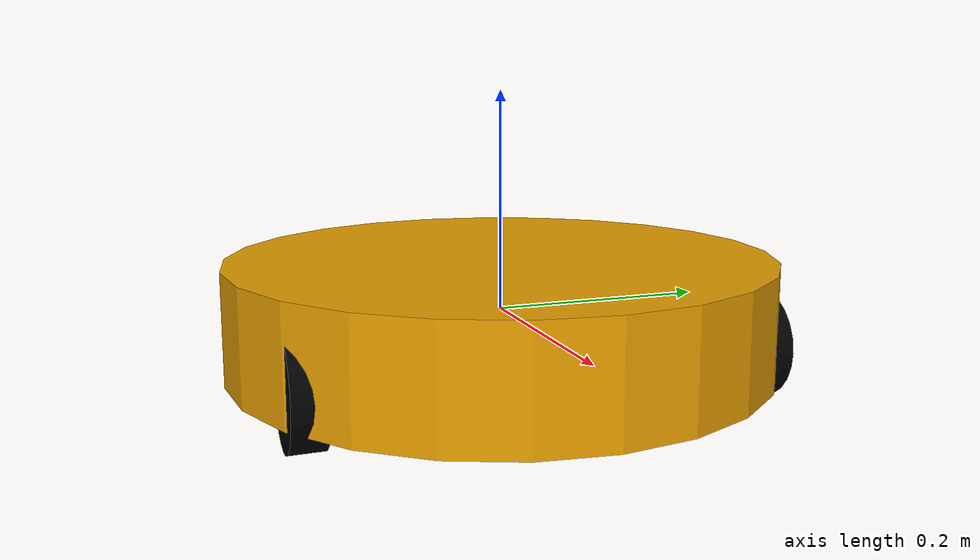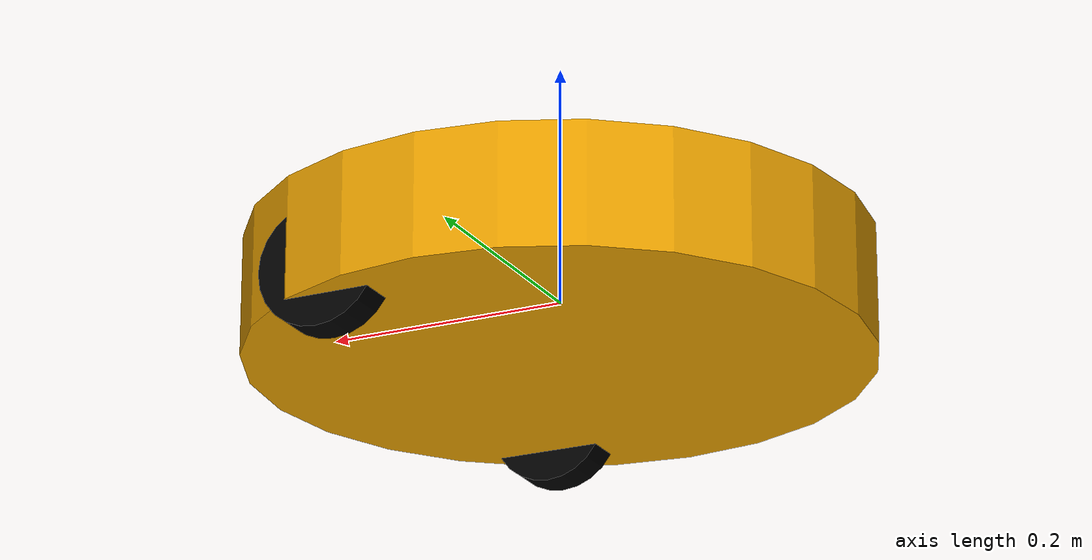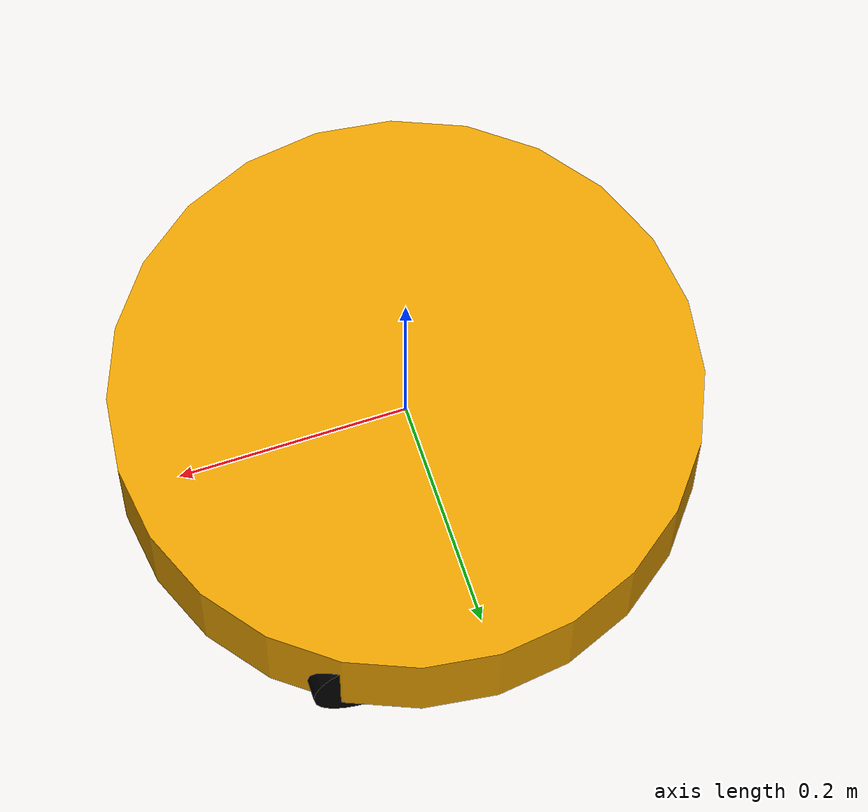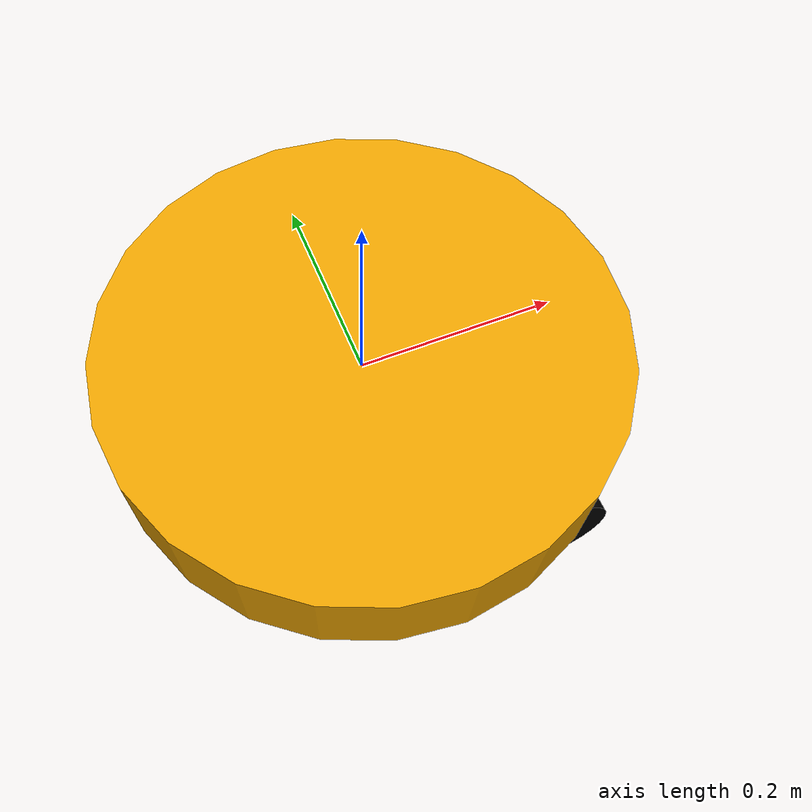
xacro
<?xml version ="1.0"?>
<robot xmlns:xacro="http://www.ros.org/wiki/xacro" name="mon_second_robot">

    <xacro:property name="chassis_diameter" value="0.5"/>
    <xacro:property name="chassis_height" value="0.1"/>
    <xacro:property name="wheel_diameter" value="0.1"/>
    <xacro:property name="wheel_width" value="0.03"/>
    <xacro:property name="wheel_desaxing" value="0.4"/>
    <xacro:property name="wheel_forwarding" value="0.1"/>
    <xacro:property name="crazy_wheel_backwarding" value="0.2"/>
    <xacro:property name="crazy_wheel_diameter" value="0.05"/>
    <xacro:property name="crazy_wheel_width" value="0.02"/>

    <xacro:include filename="$(find second_robot_description)/urdf/wheel.xacro" />
    <xacro:include filename="$(find second_robot_description)/urdf/inertia.xacro" />

    <material name="Black">
        <color rgba="0.0 0.0 0.0 1.0"/>
    </material>

    <link name="base_link">
        <visual>
            <geometry>
                <cylinder radius="${chassis_diameter/2}" length="${chassis_height}" />
            </geometry>
        </visual>
        <collision>
            <geometry>
                <cylinder radius="${chassis_diameter/2}" length="${chassis_height}" />
            </geometry>
        </collision>
        <xacro:cylinder_inertial density="0.5" r="${chassis_diameter/2}" h="${chassis_height}"/>
     </link>

    <xacro:wheel_macro side="left">
        <cylinder radius="${wheel_diameter/2}" length="${wheel_width}" />
    </xacro:wheel_macro>

    <xacro:wheel_macro side="right">
        <cylinder radius="${wheel_diameter/2}" length="${wheel_width}" />
    </xacro:wheel_macro>

    <link name="crazy_wheel_support"/>

    <joint name="crazy_wheel_support_joint" type="continuous">
        <parent link="base_link"/>
        <child link="crazy_wheel_support"/>
        <origin xyz="${-crazy_wheel_backwarding} 0.0 ${-(wheel_diameter - crazy_wheel_diameter)/2}"/>
        <axis xyz="0.0 0.0 1.0"/>
    </joint>

    <link name="crazy_wheel">
        <visual>
            <geometry>
                <cylinder radius="${crazy_wheel_diameter/2}" length="${crazy_wheel_width}" />
            </geometry>
            <origin rpy="${pi/2} 0.0 0.0"/>
            <material name="Black"/>
        </visual>
        <collision>
            <geometry>
                <cylinder radius="${crazy_wheel_diameter/2}" length="${crazy_wheel_width}" />
            </geometry>
            <origin rpy="${pi/2} 0.0 0.0"/>
            <material name="Black"/>
        </collision>
        <xacro:cylinder_inertial density="1.5" r="${crazy_wheel_diameter/2}" h="${crazy_wheel_width}"/>
    </link>

    <joint name="crazy_wheel_joint" type="continuous">
        <parent link="crazy_wheel_support"/>
        <child link="crazy_wheel"/>
        <origin xyz="0.0 0.0 0.0"/>
        <axis xyz="0.0 1.0 0.0"/>
    </joint>

</robot>

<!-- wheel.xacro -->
<robot xmlns:xacro="http://www.ros.org/wiki/xacro" name="mon_second_robot">

    <xacro:macro name="wheel_joint_origin" params="side">
        <xacro:if value="${side == 'left'}">
            <origin xyz="${wheel_forwarding} ${wheel_desaxing/2} ${-wheel_diameter/4}"/>
        </xacro:if>
        <xacro:if value="${side == 'right'}">
            <origin xyz="${wheel_forwarding} ${-wheel_desaxing/2} ${-wheel_diameter/4}"/>
        </xacro:if>
    </xacro:macro>

    <xacro:macro name="wheel_macro" params="side *shape">
    <link name="${side}_wheel">
        <visual>
            <geometry>
                <xacro:insert_block name="shape" />
            </geometry>
            <origin rpy="${pi/2} 0.0 0.0"/>
            <material name="Black"/>
        </visual>
        <collision>
            <geometry>
                <xacro:insert_block name="shape" />
            </geometry>
            <origin rpy="${pi/2} 0.0 0.0"/>
            <material name="Black"/>
        </collision>
        <xacro:cylinder_inertial density="7.8" r="${wheel_diameter/2}" h="${wheel_width}"/>
    </link>

    <joint name="${side}_wheel_joint" type="continuous">
        <parent link="base_link"/>
        <child link="${side}_wheel"/>
        <xacro:wheel_joint_origin side="${side}"/>
        <axis xyz="0.0 1.0 0.0"/>
    </joint>

    </xacro:macro>

</robot>

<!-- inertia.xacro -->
<robot xmlns:xacro="http://www.ros.org/wiki/xacro" name="mon_second_robot">

<xacro:macro name="cylinder_inertial" params="density r h">
    <xacro:property name="mass" value="${density * 1000 * pi * r*r * h}"/> <!-- density in unit less must be converted in kg/m3 -->
    <inertial>
        <mass value="${mass}"/>
        <inertia ixx="${mass/12*(3*r*r + h*h)}"
                 ixy="0.0"
                 ixz="0.0"
                 iyy="${mass/12*(3*r*r + h*h)}"
                 iyz="0.0"
                 izz="${mass*r*r/2}"/>
    </inertial>
</xacro:macro>

</robot>
